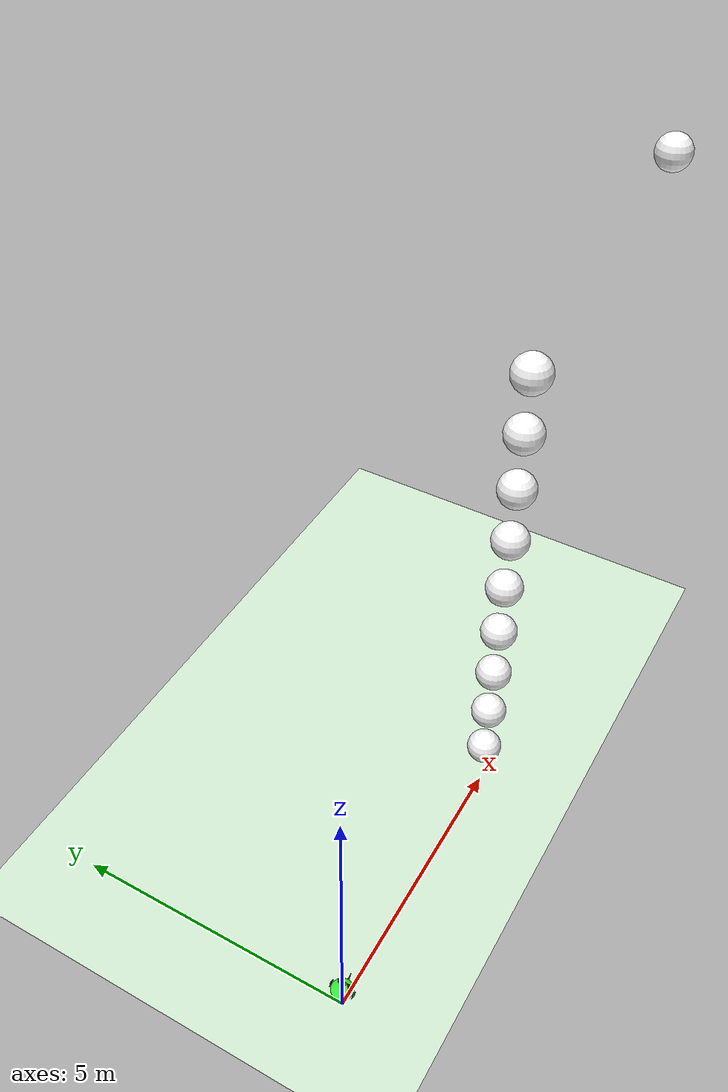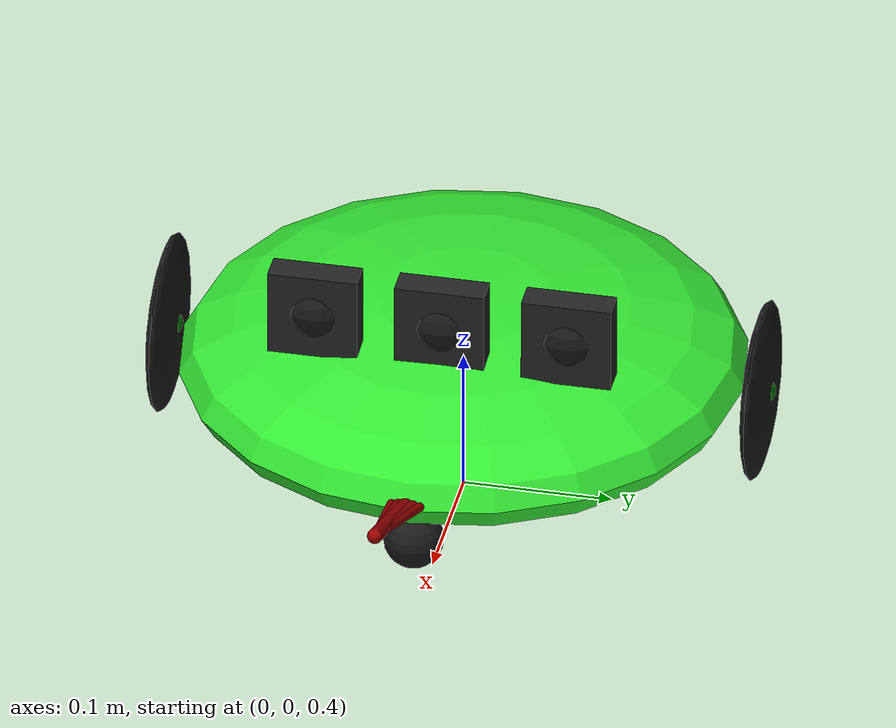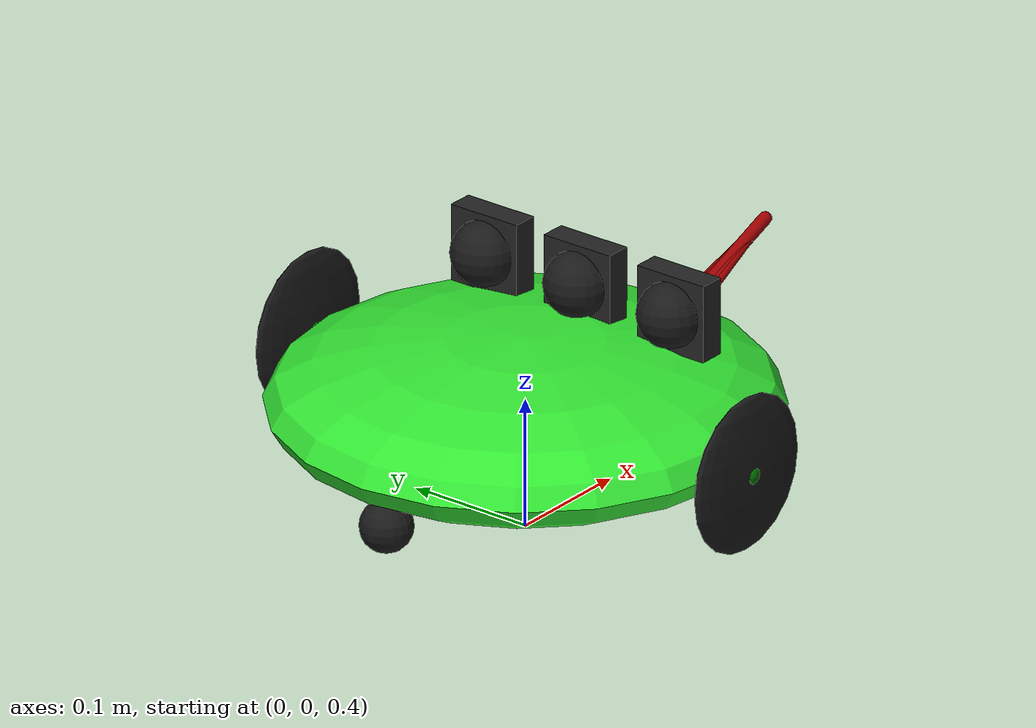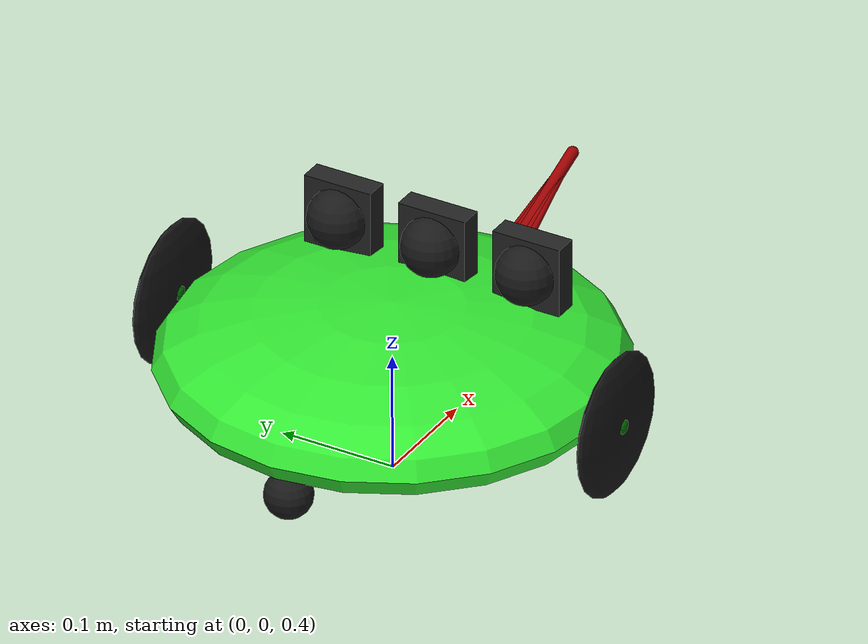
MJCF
<mujoco model="thing">
  <compiler angle="degree" coordinate="local" inertiafromgeom="true" />
  <option integrator="RK4" />

  <default>
    <joint armature="1" damping="1" />
    <geom conaffinity="0" condim="3" density="5.0" friction="1 0.5 0.5" margin="0.01" />
  </default>

  <visual>
    <map znear="0.00001" />
  </visual>

  <asset>
    <texture builtin="gradient" height="100" rgb1="1 1 1" rgb2="0 0 0" type="skybox" width="100" />
    <texture builtin="flat" height="1278" mark="cross" markrgb="1 1 1" name="texgeom" random="0.01" rgb1="0.8 0.6 0.4" rgb2="0.8 0.6 0.4" type="cube" width="127" />
    <texture builtin="checker" height="100" name="texplane" rgb1="0 0 0" rgb2="0.8 0.8 0.8" type="2d" width="100" />
    <material name="MatPlane" reflectance="0.5" shininess="1" specular="1" texrepeat="60 60" texture="texplane" />
    <material name="geom" texture="texgeom" texuniform="true" />
    <texture name="foodtexture" type="2d" file="food_texture.png" />
    <material name="foodmaterial" reflectance="0.5" shininess="1" specular="0.2" texture="foodtexture" />

    <material name="wheels" reflectance="0.2" shininess="0.21" specular="0.2" rgba="0.1 0.1 0.1 1" />

  </asset>
  <worldbody>
    <light cutoff="100" diffuse="1 1 1" dir="-0 0 -1.3" directional="true" exponent="1" pos="0 0 1.3" specular=".1 .1 .1" />
    <geom conaffinity="1" condim="3" material="MatPlane" name="floor" pos="0 0 0" rgba="0.8 0.9 0.8 1" size="40 40 40" type="plane" />

    <body name="food_body_1" pos="5.0 0.0 1.">
      <geom rgba="1. 1. 1. 1" name="food_geom_1" type="sphere" size="0.3 0.3 0.3" density="5" contype="1" material="foodmaterial" conaffinity="1" />
      <joint name="food_free_1" type="free" armature="0" damping="0" limited="false" frictionloss="0.2" />
    </body>

    <body name="food_body_2" pos="5.0 0.0 2.">
      <geom rgba="1. 1. 1. 1" name="food_geom_2" type="sphere" size="0.3 0.3 0.3" density="5" contype="1" material="foodmaterial" conaffinity="1" />
      <joint name="food_free_2" type="free" armature="0" damping="0" limited="false" frictionloss="0.2" />
    </body>

    <body name="food_body_3" pos="5.0 0.0 3.">
      <geom rgba="1. 1. 1. 1" name="food_geom_3" type="sphere" size="0.3 0.3 0.3" density="5" contype="1" material="foodmaterial" conaffinity="1" />
      <joint name="food_free_3" type="free" armature="0" damping="0" limited="false" frictionloss="0.2" />
    </body>

    <body name="food_body_4" pos="5.0 0.0 4.">
      <geom rgba="1. 1. 1. 1" name="food_geom_4" type="sphere" size="0.3 0.3 0.3" density="5" contype="1" material="foodmaterial" conaffinity="1" />
      <joint name="food_free_4" type="free" armature="0" damping="0" limited="false" frictionloss="0.2" />
    </body>

    <body name="food_body_5" pos="5.0 0.0 5.">
      <geom rgba="1. 1. 1. 1" name="food_geom_5" type="sphere" size="0.3 0.3 0.3" density="5" contype="1" material="foodmaterial" conaffinity="1" />
      <joint name="food_free_5" type="free" armature="0" damping="0" limited="false" frictionloss="0.2" />
    </body>

    <body name="food_body_6" pos="5.0 0.0 6.">
      <geom rgba="1. 1. 1. 1" name="food_geom_6" type="sphere" size="0.3 0.3 0.3" density="5" contype="1" material="foodmaterial" conaffinity="1" />
      <joint name="food_free_6" type="free" armature="0" damping="0" limited="false" frictionloss="0.2" />
    </body>

    <body name="food_body_7" pos="5.0 0.0 7.">
      <geom rgba="1. 1. 1. 1" name="food_geom_7" type="sphere" size="0.3 0.3 0.3" density="5" contype="1" material="foodmaterial" conaffinity="1" />
      <joint name="food_free_7" type="free" armature="0" damping="0" limited="false" frictionloss="0.2" />
    </body>

    <body name="food_body_8" pos="5.0 0.0 8.">
      <geom rgba="1. 1. 1. 1" name="food_geom_8" type="sphere" size="0.3 0.3 0.3" density="5" contype="1" material="foodmaterial" conaffinity="1" />
      <joint name="food_free_8" type="free" armature="0" damping="0" limited="false" frictionloss="0.2" />
    </body>

    <body name="food_body_9" pos="5.0 0.0 9.">
      <geom rgba="1. 1. 1. 1" name="food_geom_9" type="sphere" size="0.3 0.3 0.3" density="5" contype="1" material="foodmaterial" conaffinity="1" />
      <joint name="food_free_9" type="free" armature="0" damping="0" limited="false" frictionloss="0.2" />
    </body>

    <body name="food_body_10" pos="10.0 0.0 10.">
      <geom rgba="1. 1. 1. 1" name="food_geom_10" type="sphere" size="0.3 0.3 0.3" density="5" contype="1" material="foodmaterial" conaffinity="1" />
      <joint name="food_free_10" type="free" armature="0" damping="0" limited="false" frictionloss="0.2" />
    </body>

    <body name="food_body_11" pos="10.0 0.0 10.">
      <geom rgba="1. 1. 1. 1" name="food_geom_11" type="sphere" size="0.3 0.3 0.3" density="5" contype="1" material="foodmaterial" conaffinity="1" />
      <joint name="food_free_11" type="free" armature="0" damping="0" limited="false" frictionloss="0.2" />
    </body>

    <body name="torso" pos="0 0 0.5">
      <joint armature="0" damping="0" limited="false" margin="0.01" name="root" pos="0 0 0" type="free" />
      <geom fromto="0.18 0.0 0.0  0.282 0.0 0.041" name="beak" size="0.005" type="capsule" rgba="0.6 0.0 0.0 1" />
      <geom fromto="0.18 +0.01 0.0  0.28 0.0 0.04" size="0.003" type="capsule" rgba="0.6 0.0 0.0 1" />
      <geom fromto="0.18 -0.01 0.0  0.28 0.0 0.04" size="0.003" type="capsule" rgba="0.6 0.0 0.0 1" />
      <geom fromto="0.18 +0.005 0.0  0.28 0.0 0.04" size="0.004" type="capsule" rgba="0.6 0.0 0.0 1" />
      <geom fromto="0.18 -0.005 0.0  0.28 0.0 0.04" size="0.004" type="capsule" rgba="0.6 0.0 0.0 1" />

      <camera name="right_image" mode="fixed" pos="0.2 -0.085 0.05" xyaxes="0 -1 0 0 0 1" fovy="100" />
      <camera name="left_image" mode="fixed" pos="0.2 +0.085 0.05" xyaxes="0 -1 0 0 0 1" fovy="100" />
      <geom pos="0.07 +0.085 0.07" name="gviewL" size="0.01 0.03 0.03" type="box" rgba="0.14 0.14 0.14 1"/>
      <geom pos="0.06 +0.085 0.07" name="gviewL1" size="0.025" type="sphere" rgba="0.1 0.1 0.1 1"/>
      <geom pos="0.07 -0.085 0.07" name="gviewR" size="0.01 0.03 0.03" type="box" rgba="0.14 0.14 0.14 1"/>
      <geom pos="0.06 -0.085 0.07" name="gviewR1" size="0.025" type="sphere" rgba="0.1 0.1 0.1 1"/>

      <camera name="top_view" mode="trackcom" pos="0 0 4" xyaxes="0 -1 0 1 0 0" />

      <site name="imu" />

      <geom name="torso_geom" pos="0 0 0.0" size="0.189 0.189 0.05" density="25" type="ellipsoid" rgba="0.2 0.9 0.2 1" contype="1" conaffinity="1"/>

      <body name="front_center_leg" pos="0.16 0 -0.0398">
        <geom name="aux_1_geom" size="0.01" type="sphere" />
        <body name="aux_1" pos="0 0 0">
          <joint axis="0 1 0" pos="0.0 0.0 0.0" damping="0" type="hinge" />
          <geom name="fleg_geom" size="0.01" type="sphere" />
          <body name="aux_12" pos="0 0 0">
            <joint axis="1 0 0" pos="0.0 0.0 0.0" damping="0" type="hinge" />
            <geom name="fleg_geom2" size="0.02" type="sphere" friction="0" material="wheels" />
          </body>
        </body>
      </body>
      <body name="back_center_leg" pos="-0.16 0 -0.0398">
        <geom name="baux_1_geom" size="0.01" type="sphere" />
        <body name="baux_1" pos="0 0 0">
          <joint axis="0 1 0" pos="0.0 0.0 0.0" damping="0" type="hinge" />
          <geom name="bleg_geom" size="0.01" type="sphere" />
          <body name="baux_12" pos="0 0 0">
            <joint axis="1 0 0" pos="0.0 0.0 0.0" damping="0" type="hinge" />
            <geom name="bleg_geom2" size="0.02" type="sphere" friction="0" material="wheels" />
          </body>
        </body>
      </body>

      <body name="left_leg" pos="0 0.2 0">
        <geom rgba="0 0.45 0 1" name="aux_2_geom" size="0.01" type="sphere" />
        <body name="aux_2" pos="0 0 0">
          <joint axis="0 1 0" name="joint_bl" pos="0 0 0" type="hinge" />
          <geom name="bleft_leg_geom" size="0.06 0.008 0.06" type="ellipsoid" friction="1" material="wheels" />
        </body>
      </body>

      <body name="right_leg" pos="0 -0.2 0">
        <geom rgba="0 0.45 0 1" name="aux_3_geom" size="0.01" type="sphere" material="wheels" />
        <body name="aux_3" pos="0 0 0">
          <joint axis="0 1 0" name="joint_br" pos="0 0 0" type="hinge" />
          <geom name="bright_leg_geom" size="0.06 0.008 0.06" type="ellipsoid" friction="1" material="wheels" />
        </body>
      </body>
    </body>

    <body name="Htorso" pos="0 0 0.5">
      <joint armature="0" damping="0" limited="false" margin="0.01" name="Hroot" pos="0 0 0" type="free" />
      <geom fromto="0.18 0.0 0.0  0.282 0.0 0.041" name="Hbeak" size="0.005" type="capsule" rgba="0.6 0.0 0.0 1" />
      <geom fromto="0.18 +0.01 0.0  0.28 0.0 0.04" size="0.003" type="capsule" rgba="0.6 0.0 0.0 1" />
      <geom fromto="0.18 -0.01 0.0  0.28 0.0 0.04" size="0.003" type="capsule" rgba="0.6 0.0 0.0 1" />
      <geom fromto="0.18 +0.005 0.0  0.28 0.0 0.04" size="0.004" type="capsule" rgba="0.6 0.0 0.0 1" />
      <geom fromto="0.18 -0.005 0.0  0.28 0.0 0.04" size="0.004" type="capsule" rgba="0.6 0.0 0.0 1" />

      <geom pos="0.07 +0 0.07" name="HgviewL" size="0.01 0.03 0.03" type="box" rgba="0.14 0.14 0.14 1" />
      <geom pos="0.06 +0 0.07" name="HgviewL1" size="0.025" type="sphere" rgba="0.1 0.1 0.1 1" />

      <geom name="Htorso_geom" pos="0 0 0.0" size="0.189 0.189 0.05" density="25" type="ellipsoid" rgba="0.2 0.2 0.9 1" contype="1" conaffinity="1" />

      <body name="Hfront_center_leg" pos="0.16 0 -0.0398">
        <geom name="Haux_1_geom" size="0.01" type="sphere" />
        <body name="Haux_1" pos="0 0 0">
          <joint axis="0 1 0" pos="0.0 0.0 0.0" damping="0" type="hinge" />
          <geom name="Hfleg_geom" size="0.01" type="sphere" />
          <body name="Haux_12" pos="0 0 0">
            <joint axis="1 0 0" pos="0.0 0.0 0.0" damping="0" type="hinge" />
            <geom name="Hfleg_geom2" size="0.02" type="sphere" friction="0" material="wheels" />
          </body>
        </body>
      </body>
      <body name="Hback_center_leg" pos="-0.16 0 -0.0398">
        <geom name="Hbaux_1_geom" size="0.01" type="sphere" />
        <body name="Hbaux_1" pos="0 0 0">
          <joint axis="0 1 0" pos="0.0 0.0 0.0" damping="0" type="hinge" />
          <geom name="Hbleg_geom" size="0.01" type="sphere" />
          <body name="Hbaux_12" pos="0 0 0">
            <joint axis="1 0 0" pos="0.0 0.0 0.0" damping="0" type="hinge" />
            <geom name="Hbleg_geom2" size="0.02" type="sphere" friction="0" material="wheels" />
          </body>
        </body>
      </body>

      <body name="Hleft_leg" pos="0 0.2 0">
        <geom rgba="0 0.45 0 1" name="Haux_2_geom" size="0.01" type="sphere" />
        <body name="Haux_2" pos="0 0 0">
          <joint axis="0 1 0" name="Hjoint_bl" pos="0 0 0" type="hinge" />
          <geom name="Hbleft_leg_geom" size="0.06 0.008 0.06" type="ellipsoid" friction="1" material="wheels" />
        </body>
      </body>

      <body name="Hright_leg" pos="0 -0.2 0">
        <geom rgba="0 0.45 0 1" name="Haux_3_geom" size="0.01" type="sphere" material="wheels" />
        <body name="Haux_3" pos="0 0 0">
          <joint axis="0 1 0" name="Hjoint_br" pos="0 0 0" type="hinge" />
          <geom name="Hright_leg_geom" size="0.06 0.008 0.06" type="ellipsoid" friction="1" material="wheels" />
        </body>
      </body>
    </body>
  </worldbody>
  <actuator>
    <velocity joint="joint_bl" kv="100" ctrllimited="true" ctrlrange="-30 30" />
    <velocity joint="joint_br" kv="100" ctrllimited="true" ctrlrange="-30 30" />
    <velocity joint="Hjoint_bl" kv="100" ctrllimited="true" ctrlrange="-30 30" />
    <velocity joint="Hjoint_br" kv="100" ctrllimited="true" ctrlrange="-30 30" />
  </actuator>

  <sensor>
    <jointpos joint="joint_bl" />
    <jointpos joint="joint_br" />
    <jointvel joint="joint_bl" />
    <jointvel joint="joint_br" />
    <gyro name="gyro" site="imu" />
    <accelerometer name="accelerometer" site="imu" />
    <magnetometer name="magnetometer" site="imu" />
  </sensor>

</mujoco>
